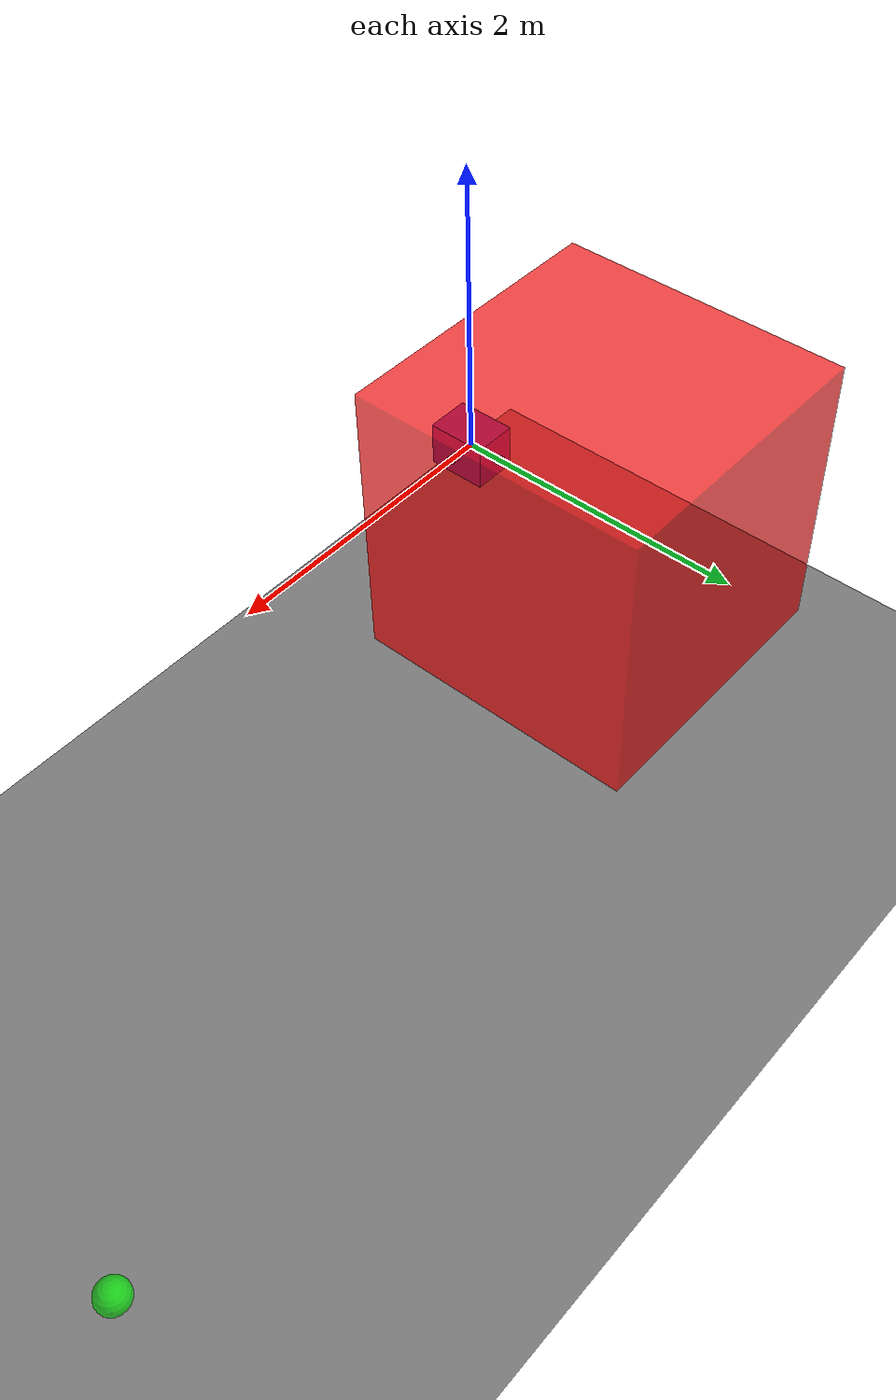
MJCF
<mujoco model="astrobee">
    <compiler angle="radian" coordinate="local"/>
    <option timestep="0.01" gravity="0 0 0"/>

    <asset>
        <texture type="skybox" builtin="gradient" rgb1="0.3 0.5 0.7" rgb2="0 0 0" width="512" height="512"/>
        <texture name="grid" type="2d" builtin="checker" rgb1=".1 .2 .3" rgb2=".2 .3 .4" width="512" height="512" mark="edge" markrgb=".8 .8 .8"/>
        <material name="grid" texture="grid" texrepeat="1 1" texuniform="true" reflectance="0.2"/>
    </asset>

    <default>
        <joint damping="0.1"/>
    </default>

    <worldbody>
        <!-- Multiple light sources -->
        <light name="spotlight" pos="0 0 10" dir="0 0 -1" cutoff="60" diffuse=".8 .8 .8" specular=".3 .3 .3"/>
        <light name="side1" pos="10 0 5" dir="-1 0 -0.3" cutoff="60" diffuse=".5 .5 .5" specular=".2 .2 .2"/>
        <light name="side2" pos="-10 0 5" dir="1 0 -0.3" cutoff="60" diffuse=".5 .5 .5" specular=".2 .2 .2"/>

        <!-- Camera -->
        <camera name="main_camera" pos="0 -10 5" xyaxes="1 0 0 0 0.5 1"/>

        <!-- Astrobee body -->
        <body name="astrobee" pos="0 0 0">
            <!-- Joints for x, y, z translations -->
            <joint name="root_x" type="slide" axis="1 0 0" pos="0 0 0"/>
            <joint name="root_y" type="slide" axis="0 1 0" pos="0 0 0"/>
            <joint name="root_z" type="slide" axis="0 0 1" pos="0 0 0"/>
            <!-- Joints for rotations -->
            <joint name="root_roll" type="hinge" axis="1 0 0" pos="0 0 0"/>
            <joint name="root_pitch" type="hinge" axis="0 1 0" pos="0 0 0"/>
            <joint name="root_yaw" type="hinge" axis="0 0 1" pos="0 0 0"/>

            <!-- Main body -->
            <geom name="body" type="box" size="0.15 0.2 0.15" rgba="0.2 0.2 0.8 1" mass="1"/>
            <!-- Thrusters -->
            <geom name="thruster_x+" type="cylinder" pos="0.15 0 0" size="0.03 0.05" rgba="0.7 0.7 0.7 1" euler="0 1.57 0"/>
            <geom name="thruster_x-" type="cylinder" pos="-0.15 0 0" size="0.03 0.05" rgba="0.7 0.7 0.7 1" euler="0 1.57 0"/>
            <geom name="thruster_y+" type="cylinder" pos="0 0.2 0" size="0.03 0.05" rgba="0.7 0.7 0.7 1" euler="1.57 0 0"/>
            <geom name="thruster_y-" type="cylinder" pos="0 -0.2 0" size="0.03 0.05" rgba="0.7 0.7 0.7 1" euler="1.57 0 0"/>
        </body>

        <!-- Goal marker -->
        <body name="goal" pos="5 2 -1">
            <geom type="sphere" size="0.1" rgba="0 1 0 0.7"/>
        </body>

        <!-- Obstacle -->
        <geom name="obstacle" type="box" size="1.0 1.0 1.0" pos="0 1 0" rgba="1 0 0 0.7"/>

        <!-- Floor -->
        <geom name="floor" type="plane" size="10 10 0.1" rgba="0.5 0.5 0.5 1" pos="0 0 -2"/>

        <!-- Waypoint markers -->
        <body name="waypoints">
            <!-- This will be dynamically populated by the simulation script if needed -->
        </body>
    </worldbody>

    <actuator>
        <!-- Translation actuators with force limits -->
        <motor joint="root_x" name="translate_x" gear="0.68" ctrlrange="-1 1"/>
        <motor joint="root_y" name="translate_y" gear="0.332" ctrlrange="-1 1"/>
        <motor joint="root_z" name="translate_z" gear="0.394" ctrlrange="-1 1"/>

        <!-- Rotation actuators with torque limits -->
        <motor joint="root_roll" name="rotate_roll" gear="0.068" ctrlrange="-1 1"/>
        <motor joint="root_pitch" name="rotate_pitch" gear="0.0332" ctrlrange="-1 1"/>
        <motor joint="root_yaw" name="rotate_yaw" gear="0.0394" ctrlrange="-1 1"/>
    </actuator>
</mujoco>
